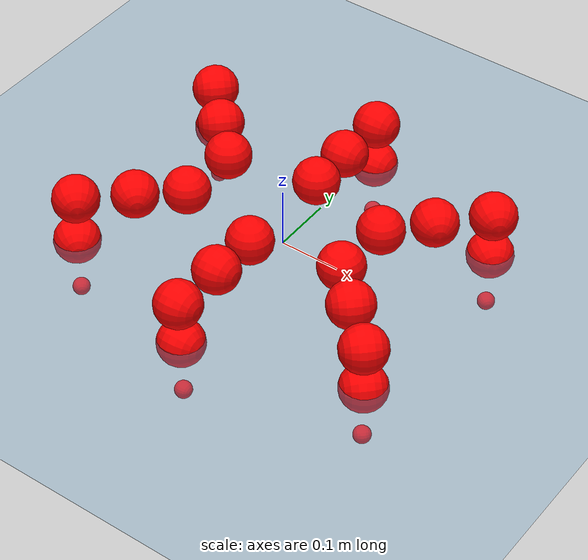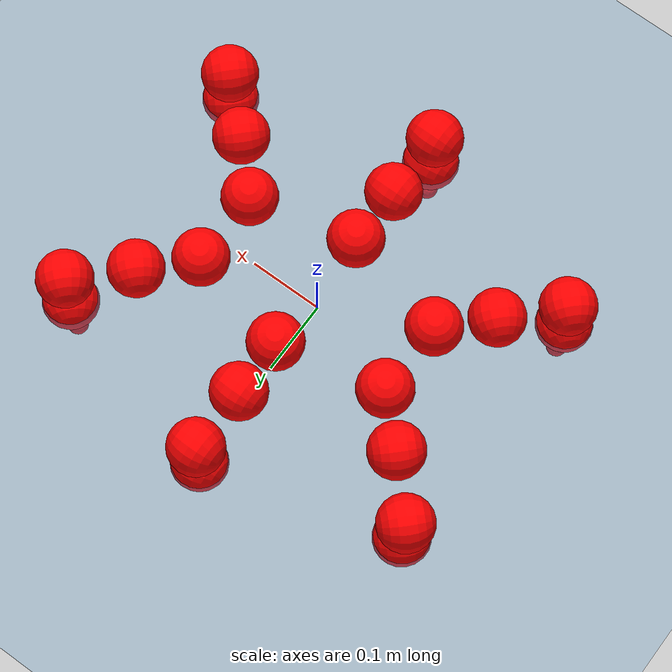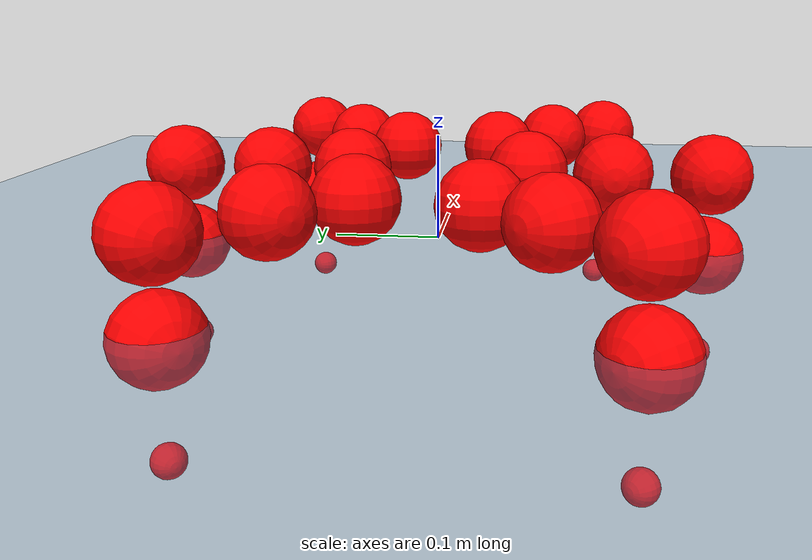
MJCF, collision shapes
<mujoco model="Golem">
  <compiler angle="radian" assetdir="assets" balanceinertia="true" inertiafromgeom="false"/>

  <option timestep="0.005" density="1.2" viscosity="2e-05"/>

  <size nkey="1"/>

  <visual>
    <quality shadowsize="8192"/>
    <map shadowclip="0.5"/>
  </visual>

  <default>
    <default class="/">
      <joint armature="0.01" damping="0.01" frictionloss="0.01"/>
      <geom contype="0" conaffinity="0" group="1" solref="-1000 -80"/>
      <site size="0.01 0.005 0.005" group="5"/>
      <general forcelimited="true" biastype="affine" gainprm="25" biasprm="0 -25 -0.5"/>
      <default class="visual">
        <geom type="mesh" group="2"/>
      </default>
      <default class="collision">
        <geom group="3"/>
      </default>
      <default class="foot">
        <geom size="0.01 0 0" condim="6" group="4" priority="1" solimp="0.015 1 0.01"/>
      </default>
      <default class="reward_collision_sphere">
        <geom group="5" rgba="1 0 0 1"/>
      </default>
    </default>
  </default>

  <asset>
    <texture type="skybox" colorspace="auto" name="//unnamed_texture_0" builtin="gradient" rgb1="0.95 0.95 0.95" rgb2="0.95 0.95 0.95" width="100" height="600"/>
    <texture type="2d" colorspace="auto" name="texplane" builtin="checker" rgb1="0.345 0.575 0.748" rgb2="0.345 0.575 0.748" markrgb="1 1 1" width="512" height="512"/>
    <material name="MatPlane" class="/" texture="texplane" texuniform="true" texrepeat="2 2" specular="0.9"/>
    <mesh name="body" class="/" file="body.stl" scale="0.001 0.001 0.001"/>
    <mesh name="coxa" class="/" file="coxa.stl" scale="0.001 0.001 0.001"/>
    <mesh name="femur" class="/" file="femur.stl" scale="0.001 0.001 0.001"/>
    <mesh name="tibia" class="/" file="tibia.stl" scale="0.001 0.001 0.001"/>
    <mesh name="tarsus" class="/" file="tarsus.stl" scale="0.001 0.001 0.001"/>
  </asset>

  <worldbody>
    <geom name="floor" class="/" size="100 100 0.125" type="plane" group="0" material="MatPlane"/>
    <light name="toplight_shadow" class="/" pos="0 0 5" dir="0.0990148 0.0990148 -0.990148" type="directional" ambient="0.04 0.04 0.04" diffuse="0.55 0.55 0.55" specular="0.12 0.12 0.12"/>
    <light name="toplight_fill" class="/" pos="0 0 5" dir="0.0990148 0.0990148 -0.990148" type="directional" castshadow="false" ambient="0.04 0.04 0.04" diffuse="0.3 0.3 0.3" specular="0.08 0.08 0.08"/>
    <body name="trunk" pos="5.70789e-05 0.00107447 -0.00228537" quat="0.999999 5.23318e-05 -0.000542376 0.0012607">
      <inertial pos="0.00113222 -0.00105803 -0.00156505" quat="1 -2.43772e-05 -0.000104398 2.50643e-05" mass="2.87363" diaginertia="0.00624191 0.00394551 0.0131747"/>
      <joint name="//unnamed_joint_0" type="free"/>
      <geom name="//unnamed_geom_1" class="/" pos="0 0 0.0676229" quat="1 0 0 0" type="mesh" rgba="0.9 0.9 0.9 1" mesh="body"/>
      <site name="imu" class="/" pos="0.121173 0.0138739 0.11779" size="0.00934215"/>
      <camera name="track" class="/" pos="0 -1.67186 0" quat="0.707107 0.707107 0 0" mode="trackcom"/>
      <camera name="ego_camera" class="/" pos="0.118314 0 0.105661" quat="-0.5 -0.5 0.5 0.5"/>
      <body name="coxa_RR" pos="-0.163304 -0.0693317 0.0695124" quat="0.383573 -0.000226215 -0.000590903 -0.92351">
        <inertial pos="0.00263915 -5.12906e-05 -0.00158902" quat="0.999989 -0.00253668 0.00329929 0.00210391" mass="0.169838" diaginertia="0.00631239 0.00424969 0.0136127"/>
        <joint name="coxa_joint_RR" class="/" pos="0 0 0" axis="0.000486276 -0.00346677 -0.999994" range="-3.12214 3.14246" armature="0.00870298" damping="0" frictionloss="0.00953234"/>
        <geom name="//unnamed_geom_2" class="/" type="mesh" rgba="0.2 0.2 0.2 1" mesh="coxa"/>
        <geom name="//unnamed_geom_3" class="reward_collision_sphere" size="0.0373686" pos="-0.0273033 0 0"/>
        <body name="femur_RR" pos="0.0519541 -0.00102115 0.00176558" quat="0.500497 -0.500191 0.498876 0.500434">
          <inertial pos="-0.000221077 0.00246886 0.00168058" quat="0.999939 0.00958871 0.00482649 0.00255832" mass="0.156691" diaginertia="0.00617855 0.00388203 0.0126926"/>
          <joint name="femur_joint_RR" class="/" pos="0 0 0" axis="-0.00348695 -0.00325963 -0.999989" stiffness="1.54099e-05" range="-3.14044 3.13941" armature="0.0106018" damping="0.00458898" frictionloss="0.00933687"/>
          <geom name="//unnamed_geom_4" class="/" type="mesh" rgba="0.9 0.9 0.9 1" mesh="femur"/>
          <geom name="//unnamed_geom_5" class="reward_collision_sphere" size="0.0373686"/>
          <body name="tibia_RR" pos="-0.00250251 -0.0894739 -0.000177652" quat="-9.57776e-06 1 0.000102882 4.01888e-05">
            <inertial pos="-0.000409242 0.00277349 -0.00101573" quat="1 -8.07648e-05 6.96855e-05 -0.000389266" mass="0.157128" diaginertia="0.00604001 0.00392368 0.0128338"/>
            <joint name="tibia_joint_RR" class="/" pos="0 0 0" axis="-0.0142661 -0.00214181 0.999896" range="-3.08617 3.12015" armature="0.00839898" damping="0.00650039" frictionloss="0.0103858"/>
            <geom name="//unnamed_geom_6" class="/" type="mesh" rgba="0.2 0.2 0.2 1" mesh="tibia"/>
            <geom name="//unnamed_geom_7" class="reward_collision_sphere" size="0.0373686"/>
            <body name="tarsus_RR" pos="0.0796586 0.00294228 -0.00237673" quat="1 -0.000175106 -0.000729645 -0.000467541">
              <inertial pos="0.0561187 0.00143367 0.00256702" quat="0.501029 0.49537 0.504981 0.498571" mass="0.15713" diaginertia="0.005947 0.00396076 0.0130713"/>
              <joint name="tarsus_joint_RR" class="/" pos="0 0 0" axis="0.0123966 0.00340793 0.999917" range="-3.17523 3.1501" armature="0.0093342" damping="0.0111288" frictionloss="0.00887918"/>
              <geom name="//unnamed_geom_8" class="/" type="mesh" rgba="0.9 0.9 0.9 1" mesh="tarsus"/>
              <geom name="foot_1" class="foot" size="0.0083849" pos="0.101932 0 0" quat="0 -0.707107 0 0.707107"/>
              <geom name="//unnamed_geom_10" class="reward_collision_sphere" size="0.0373686"/>
              <geom name="//unnamed_geom_11" class="reward_collision_sphere" size="0.0140132" pos="0.0978367 0 0"/>
              <site name="foot_1" class="foot" pos="0.101932 0 0" quat="0 -0.707107 0 0.707107" size="0.00934215"/>
            </body>
          </body>
        </body>
      </body>
      <body name="coxa_RM" pos="0.00213139 -0.113545 0.0701277" quat="0.707065 0.000346447 -0.000328472 -0.707148">
        <inertial pos="-0.000493707 -0.000174014 -0.00261977" quat="0.999926 -0.00676928 0.000522823 0.0101317" mass="0.164941" diaginertia="0.0064201 0.0043435 0.0140178"/>
        <joint name="coxa_joint_RM" class="/" pos="0 0 0" axis="0.0056532 -0.00898415 -0.999944" range="-3.14344 3.10553" armature="0.00957841" damping="0.00943021" frictionloss="0.0104322"/>
        <geom name="//unnamed_geom_12" class="/" type="mesh" rgba="0.2 0.2 0.2 1" mesh="coxa"/>
        <geom name="//unnamed_geom_13" class="reward_collision_sphere" size="0.0373686" pos="-0.0273033 0 0"/>
        <body name="femur_RM" pos="0.0519697 -0.00134415 -0.000748719" quat="0.500204 -0.499795 0.49967 0.500331">
          <inertial pos="0.000401499 0.00241747 0.000440123" quat="0.999986 0.00162984 -0.00371278 0.00353489" mass="0.166125" diaginertia="0.00601183 0.00404932 0.0129084"/>
          <joint name="femur_joint_RM" class="/" pos="0 0 0" axis="-0.00131549 -0.00020049 -0.999999" range="-3.08512 3.16746" armature="0.0105599" damping="0.0155683" frictionloss="0.0106356"/>
          <geom name="//unnamed_geom_14" class="/" type="mesh" rgba="0.9 0.9 0.9 1" mesh="femur"/>
          <geom name="//unnamed_geom_15" class="reward_collision_sphere" size="0.0373686"/>
          <body name="tibia_RM" pos="-0.000410498 -0.0898537 -0.000116875" quat="-0.000468944 1 -0.000398411 4.77786e-05">
            <inertial pos="-0.000324485 0.000199738 0.00272674" quat="0.999988 0.00293288 -0.00118542 -0.00384247" mass="0.168759" diaginertia="0.00622222 0.00407935 0.0129396"/>
            <joint name="tibia_joint_RM" class="/" pos="0 0 0" axis="0.00586192 -0.0102079 0.999931" range="-3.12474 3.18839" armature="0.00810339" damping="0.0180452" frictionloss="0.0106029"/>
            <geom name="//unnamed_geom_16" class="/" type="mesh" rgba="0.2 0.2 0.2 1" mesh="tibia"/>
            <geom name="//unnamed_geom_17" class="reward_collision_sphere" size="0.0373686"/>
            <body name="tarsus_RM" pos="0.0777378 -0.00204532 -0.000431258" quat="0.999999 0.00120792 0.000372226 4.15651e-05">
              <inertial pos="0.0550689 -0.00043521 0.000650839" quat="0.500108 0.497726 0.501055 0.501104" mass="0.174227" diaginertia="0.00646827 0.00422323 0.0136719"/>
              <joint name="tarsus_joint_RM" class="/" pos="0 0 0" axis="-0.00215743 0.00156581 0.999996" range="-3.13183 3.1572" armature="0.00879959" damping="0.0143017" frictionloss="0.00896585"/>
              <geom name="//unnamed_geom_18" class="/" type="mesh" rgba="0.9 0.9 0.9 1" mesh="tarsus"/>
              <geom name="foot_2" class="foot" size="0.00856796" pos="0.101932 0 0" quat="0 -0.707107 0 0.707107"/>
              <geom name="//unnamed_geom_20" class="reward_collision_sphere" size="0.0373686"/>
              <geom name="//unnamed_geom_21" class="reward_collision_sphere" size="0.0140132" pos="0.0978367 0 0"/>
              <site name="foot_2" class="foot" pos="0.101932 0 0" quat="0 -0.707107 0 0.707107" size="0.00934215"/>
            </body>
          </body>
        </body>
      </body>
      <body name="coxa_RF" pos="0.162697 -0.0716574 0.0700514" quat="0.923886 5.02061e-05 4.84664e-05 -0.382667">
        <inertial pos="-0.0025671 -0.000552379 -0.00247668" quat="0.999941 0.00790383 0.0066715 -0.00334358" mass="0.162171" diaginertia="0.00640865 0.00413892 0.0137012"/>
        <joint name="coxa_joint_RF" class="/" pos="0 0 0" axis="0.00515686 0.00500398 -0.999974" range="-3.15019 3.09357" armature="0.00980345" damping="0.0205307" frictionloss="0.0106297"/>
        <geom name="//unnamed_geom_22" class="/" type="mesh" rgba="0.2 0.2 0.2 1" mesh="coxa"/>
        <geom name="//unnamed_geom_23" class="reward_collision_sphere" size="0.0373686" pos="-0.0273033 0 0"/>
        <body name="femur_RF" pos="0.0560356 -0.00107839 0.00122626" quat="0.500539 -0.499909 0.498783 0.500767">
          <inertial pos="-0.000873518 0.000468025 0.000711481" quat="0.999963 -0.00114576 -0.00738735 0.0043655" mass="0.163824" diaginertia="0.00611577 0.00401732 0.0128262"/>
          <joint name="femur_joint_RF" class="/" pos="0 0 0" axis="0.00152541 0.00122321 -0.999998" range="-3.11697 3.1329" armature="0.00919154" damping="0.0107708" frictionloss="0.00890183"/>
          <geom name="//unnamed_geom_24" class="/" type="mesh" rgba="0.9 0.9 0.9 1" mesh="femur"/>
          <geom name="//unnamed_geom_25" class="reward_collision_sphere" size="0.0373686"/>
          <body name="tibia_RF" pos="0.00258869 -0.0883684 0.00185483" quat="0.000138541 1 0.000178633 -0.000121265">
            <inertial pos="0.000682284 -0.00258041 -0.00275143" quat="0.999904 0.0129609 -0.00224112 -0.00434127" mass="0.16034" diaginertia="0.00604338 0.00401181 0.0131983"/>
            <joint name="tibia_joint_RF" class="/" pos="0 0 0" axis="-0.00129701 0.0123787 0.999923" stiffness="0.00925274" range="-3.16765 3.13934" armature="0.00941388" damping="0.0118762" frictionloss="0.00839372"/>
            <geom name="//unnamed_geom_26" class="/" type="mesh" rgba="0.2 0.2 0.2 1" mesh="tibia"/>
            <geom name="//unnamed_geom_27" class="reward_collision_sphere" size="0.0373686"/>
            <body name="tarsus_RF" pos="0.0785685 -0.00114785 -0.00164208" quat="1 -2.29871e-05 -3.94268e-05 -2.82343e-05">
              <inertial pos="0.0537822 -0.000966677 0.000801627" quat="0.499361 0.499196 0.500879 0.500562" mass="0.160248" diaginertia="0.00605632 0.00387903 0.0127915"/>
              <joint name="tarsus_joint_RF" class="/" pos="0 0 0" axis="-0.0119495 0.00780744 0.999898" stiffness="0.00343476" range="-3.11988 3.15796" armature="0.00941129" damping="0" frictionloss="0.0102096"/>
              <geom name="//unnamed_geom_28" class="/" type="mesh" rgba="0.9 0.9 0.9 1" mesh="tarsus"/>
              <geom name="foot_3" class="foot" size="0.00958442" pos="0.101932 0 0" quat="0 -0.707107 0 0.707107"/>
              <geom name="//unnamed_geom_30" class="reward_collision_sphere" size="0.0373686"/>
              <geom name="//unnamed_geom_31" class="reward_collision_sphere" size="0.0140132" pos="0.0978367 0 0"/>
              <site name="foot_3" class="foot" pos="0.101932 0 0" quat="0 -0.707107 0 0.707107" size="0.00934215"/>
            </body>
          </body>
        </body>
      </body>
      <body name="coxa_LR" pos="-0.161296 0.0704286 0.0714988" quat="0.383986 -0.000411559 -0.000138699 0.923339">
        <inertial pos="-0.00131516 0.00254233 -0.00251025" quat="0.999988 0.00392673 -0.00268869 -0.000978888" mass="0.161292" diaginertia="0.00617235 0.00390877 0.0130109"/>
        <joint name="coxa_joint_LR" class="/" pos="0 0 0" axis="0.0144662 -0.0084361 -0.99986" stiffness="0.00452287" range="-3.16157 3.1943" armature="0.00932115" damping="0.0147634" frictionloss="0.0105343"/>
        <geom name="//unnamed_geom_32" class="/" type="mesh" rgba="0.2 0.2 0.2 1" mesh="coxa"/>
        <geom name="//unnamed_geom_33" class="reward_collision_sphere" size="0.0373686" pos="-0.0273033 0 0"/>
        <body name="femur_LR" pos="0.0528874 0.00106316 0.00182759" quat="0.50014 -0.499918 0.500098 0.499844">
          <inertial pos="-0.00101191 0.00247349 4.01218e-05" quat="0.999913 -0.0114999 -0.00591111 -0.00244149" mass="0.162156" diaginertia="0.00651086 0.00412733 0.0129091"/>
          <joint name="femur_joint_LR" class="/" pos="0 0 0" axis="0.00379983 0.0107255 0.999935" stiffness="0.000203305" range="-3.16654 3.15051" armature="0.0103548" damping="0.00509862" frictionloss="0.00958821"/>
          <geom name="//unnamed_geom_34" class="/" type="mesh" rgba="0.9 0.9 0.9 1" mesh="femur"/>
          <geom name="//unnamed_geom_35" class="reward_collision_sphere" size="0.0373686"/>
          <body name="tibia_LR" pos="0.00172784 -0.0907509 -0.00337695" quat="-0.000117103 1 -6.47116e-05 1.55041e-05">
            <inertial pos="-0.00165741 0.000221785 0.00282254" quat="0.999924 0.00280666 0.00488113 -0.0109938" mass="0.166972" diaginertia="0.00610327 0.00409849 0.0129063"/>
            <joint name="tibia_joint_LR" class="/" pos="0 0 0" axis="0.00168889 -0.00174946 -0.999997" range="-3.08781 3.1907" armature="0.00797257" damping="0" frictionloss="0.00931359"/>
            <geom name="//unnamed_geom_36" class="/" type="mesh" rgba="0.2 0.2 0.2 1" mesh="tibia"/>
            <geom name="//unnamed_geom_37" class="reward_collision_sphere" size="0.0373686"/>
            <body name="tarsus_LR" pos="0.0795245 -0.000611028 0.00194787" quat="1 -1.10156e-05 -4.67275e-06 -7.09932e-06">
              <inertial pos="0.0549881 -0.00256846 -0.00104925" quat="0.499395 0.499912 0.49996 0.500732" mass="0.157311" diaginertia="0.0062272 0.00419201 0.0134314"/>
              <joint name="tarsus_joint_LR" class="/" pos="0 0 0" axis="0.000786214 -0.000354671 -1" range="-3.12231 3.1817" armature="0.00947167" damping="0.00349156" frictionloss="0.00839917"/>
              <geom name="//unnamed_geom_38" class="/" type="mesh" rgba="0.9 0.9 0.9 1" mesh="tarsus"/>
              <geom name="foot_4" class="foot" size="0.0100723" pos="0.101932 0 0" quat="0.707107 0 -0.707107 0"/>
              <geom name="//unnamed_geom_40" class="reward_collision_sphere" size="0.0373686"/>
              <geom name="//unnamed_geom_41" class="reward_collision_sphere" size="0.0140132" pos="0.0978367 0 0"/>
              <site name="foot_4" class="foot" pos="0.101932 0 0" quat="0.707107 0 -0.707107 0" size="0.00934215"/>
            </body>
          </body>
        </body>
      </body>
      <body name="coxa_LM" pos="0.00282842 0.109491 0.070404" quat="0.70712 -0.000157056 -0.000508776 0.707093">
        <inertial pos="0.000725127 0.000239791 -0.00234415" quat="0.999986 -0.00418814 0.00200449 0.00234636" mass="0.160817" diaginertia="0.00630351 0.00403768 0.0131476"/>
        <joint name="coxa_joint_LM" class="/" pos="0 0 0" axis="-0.00982622 0.00207282 -0.99995" range="-3.11833 3.13491" armature="0.00939874" damping="0.003054" frictionloss="0.00938488"/>
        <geom name="//unnamed_geom_42" class="/" type="mesh" rgba="0.2 0.2 0.2 1" mesh="coxa"/>
        <geom name="//unnamed_geom_43" class="reward_collision_sphere" size="0.0373686" pos="-0.0273033 0 0"/>
        <body name="femur_LM" pos="0.0508787 0.00188368 0.000242743" quat="0.499974 -0.499931 0.500408 0.499687">
          <inertial pos="-0.00252819 -0.00054825 -0.00242552" quat="0.999913 -0.000580087 -0.00948968 0.0091034" mass="0.158506" diaginertia="0.00614232 0.00397069 0.0130254"/>
          <joint name="femur_joint_LM" class="/" pos="0 0 0" axis="0.00409003 -0.00508435 0.999979" stiffness="0.000797216" range="-3.1531 3.08986" armature="0.00845097" damping="0" frictionloss="0.00804433"/>
          <geom name="//unnamed_geom_44" class="/" type="mesh" rgba="0.9 0.9 0.9 1" mesh="femur"/>
          <geom name="//unnamed_geom_45" class="reward_collision_sphere" size="0.0373686"/>
          <body name="tibia_LM" pos="-0.000445343 -0.0878215 0.000216103" quat="0.000390131 1 0.000211154 0.000599265">
            <inertial pos="0.00116236 -0.000336262 0.000153973" quat="0.999986 -0.00465037 0.00237866 -0.00114719" mass="0.16214" diaginertia="0.00607052 0.00396725 0.0128227"/>
            <joint name="tibia_joint_LM" class="/" pos="0 0 0" axis="0.00548602 0.013897 -0.999888" range="-3.08517 3.10724" armature="0.0102838" damping="0" frictionloss="0.0106251"/>
            <geom name="//unnamed_geom_46" class="/" type="mesh" rgba="0.2 0.2 0.2 1" mesh="tibia"/>
            <geom name="//unnamed_geom_47" class="reward_collision_sphere" size="0.0373686"/>
            <body name="tarsus_LM" pos="0.0785766 -0.00113024 -0.000293124" quat="1 -1.69999e-05 0.000107225 2.24119e-05">
              <inertial pos="0.0533594 -0.00238025 0.000605667" quat="0.496372 0.506581 0.49824 0.498746" mass="0.157435" diaginertia="0.00610924 0.00386126 0.0127505"/>
              <joint name="tarsus_joint_LM" class="/" pos="0 0 0" axis="-0.00889095 0.00448627 -0.99995" stiffness="0.0130955" range="-3.14365 3.14203" armature="0.00968606" damping="0.021567" frictionloss="0.0105051"/>
              <geom name="//unnamed_geom_48" class="/" type="mesh" rgba="0.9 0.9 0.9 1" mesh="tarsus"/>
              <geom name="foot_5" class="foot" size="0.0101565" pos="0.101932 0 0" quat="0.707107 0 -0.707107 0"/>
              <geom name="//unnamed_geom_50" class="reward_collision_sphere" size="0.0373686"/>
              <geom name="//unnamed_geom_51" class="reward_collision_sphere" size="0.0140132" pos="0.0978367 0 0"/>
              <site name="foot_5" class="foot" pos="0.101932 0 0" quat="0.707107 0 -0.707107 0" size="0.00934215"/>
            </body>
          </body>
        </body>
      </body>
      <body name="coxa_LF" pos="0.16381 0.0675593 0.0681116" quat="0.923893 1.56687e-05 -1.11736e-05 0.382652">
        <inertial pos="-0.00252792 -0.00222001 -0.00236592" quat="0.999999 0.000798674 0.000951004 -0.00037613" mass="0.156443" diaginertia="0.00602776 0.00382652 0.013147"/>
        <joint name="coxa_joint_LF" class="/" pos="0 0 0" axis="0.00661213 -0.00767533 -0.999949" range="-3.17691 3.13727" armature="0.00950256" damping="0.00823756" frictionloss="0.00810296"/>
        <geom name="//unnamed_geom_52" class="/" type="mesh" rgba="0.2 0.2 0.2 1" mesh="coxa"/>
        <geom name="//unnamed_geom_53" class="reward_collision_sphere" size="0.0373686" pos="-0.0273033 0 0"/>
        <body name="femur_LF" pos="0.0551256 0.00276726 0.00103443" quat="0.499483 -0.500781 0.500343 0.499391">
          <inertial pos="-0.000430425 -0.00213823 -0.000316421" quat="0.999999 -0.000685851 0.000866999 0.000154951" mass="0.157155" diaginertia="0.00583118 0.00393741 0.0127303"/>
          <joint name="femur_joint_LF" class="/" pos="0 0 0" axis="-0.00691599 0.0137619 0.999881" range="-3.16621 3.19338" armature="0.00889686" damping="0.00721265" frictionloss="0.00909569"/>
          <geom name="//unnamed_geom_54" class="/" type="mesh" rgba="0.9 0.9 0.9 1" mesh="femur"/>
          <geom name="//unnamed_geom_55" class="reward_collision_sphere" size="0.0373686"/>
          <body name="tibia_LF" pos="-0.0003896 -0.0896869 9.49376e-05" quat="0.000695512 1 -0.000214123 0.000496828">
            <inertial pos="0.0020121 0.00290383 -0.00157064" quat="0.999998 0.000683819 0.00139767 -0.00123833" mass="0.168948" diaginertia="0.00610562 0.00410182 0.0129459"/>
            <joint name="tibia_joint_LF" class="/" pos="0 0 0" axis="-0.00703354 0.00811223 -0.999942" range="-3.1474 3.08488" armature="0.0091199" damping="0.00691426" frictionloss="0.00914071"/>
            <geom name="//unnamed_geom_56" class="/" type="mesh" rgba="0.2 0.2 0.2 1" mesh="tibia"/>
            <geom name="//unnamed_geom_57" class="reward_collision_sphere" size="0.0373686"/>
            <body name="tarsus_LF" pos="0.0793833 0.000365514 -0.00318096" quat="1 -9.58949e-06 7.01462e-06 -2.9534e-06">
              <inertial pos="0.0533964 -0.00020507 0.000591063" quat="0.507937 0.497178 0.501494 0.493273" mass="0.162157" diaginertia="0.00623925 0.00411578 0.0133648"/>
              <joint name="tarsus_joint_LF" class="/" pos="0 0 0" axis="-0.00204941 -0.00825117 -0.999964" stiffness="0.0288891" range="-3.11315 3.0885" armature="0.00910013" damping="0.0369609" frictionloss="0.00877889"/>
              <geom name="//unnamed_geom_58" class="/" type="mesh" rgba="0.9 0.9 0.9 1" mesh="tarsus"/>
              <geom name="foot_6" class="foot" size="0.00920662" pos="0.101932 0 0" quat="0.707107 0 -0.707107 0"/>
              <geom name="//unnamed_geom_60" class="reward_collision_sphere" size="0.0373686"/>
              <geom name="//unnamed_geom_61" class="reward_collision_sphere" size="0.0140132" pos="0.0978367 0 0"/>
              <site name="foot_6" class="foot" pos="0.101932 0 0" quat="0.707107 0 -0.707107 0" size="0.00934215"/>
            </body>
          </body>
        </body>
      </body>
    </body>
  </worldbody>

  <contact>
    <pair class="/" geom1="floor" geom2="foot_1" name="//unnamed_contact_0"/>
    <pair class="/" geom1="floor" geom2="foot_2" name="//unnamed_contact_1"/>
    <pair class="/" geom1="floor" geom2="foot_3" name="//unnamed_contact_2"/>
    <pair class="/" geom1="floor" geom2="foot_4" name="//unnamed_contact_3"/>
    <pair class="/" geom1="floor" geom2="foot_5" name="//unnamed_contact_4"/>
    <pair class="/" geom1="floor" geom2="foot_6" name="//unnamed_contact_5"/>
  </contact>

  <actuator>
    <general name="coxa_joint_RR" class="/" joint="coxa_joint_RR" forcerange="-6.81319 6.81319" gainprm="22.6944" biasprm="0 -22.6944 -0.489801"/>
    <general name="femur_joint_RR" class="/" joint="femur_joint_RR" forcerange="-6.69867 6.69867" gainprm="22.6944" biasprm="0 -22.6944 -0.489801"/>
    <general name="tibia_joint_RR" class="/" joint="tibia_joint_RR" forcerange="-6.83316 6.83316" gainprm="22.6944" biasprm="0 -22.6944 -0.489801"/>
    <general name="tarsus_joint_RR" class="/" joint="tarsus_joint_RR" forcerange="-7.52395 7.52395" gainprm="22.6944" biasprm="0 -22.6944 -0.489801"/>
    <general name="coxa_joint_RM" class="/" joint="coxa_joint_RM" forcerange="-6.66771 6.66771" gainprm="22.6944" biasprm="0 -22.6944 -0.489801"/>
    <general name="femur_joint_RM" class="/" joint="femur_joint_RM" forcerange="-7.52468 7.52468" gainprm="22.6944" biasprm="0 -22.6944 -0.489801"/>
    <general name="tibia_joint_RM" class="/" joint="tibia_joint_RM" forcerange="-6.74984 6.74984" gainprm="22.6944" biasprm="0 -22.6944 -0.489801"/>
    <general name="tarsus_joint_RM" class="/" joint="tarsus_joint_RM" forcerange="-7.04564 7.04564" gainprm="22.6944" biasprm="0 -22.6944 -0.489801"/>
    <general name="coxa_joint_RF" class="/" joint="coxa_joint_RF" forcerange="-6.11777 6.11777" gainprm="22.6944" biasprm="0 -22.6944 -0.489801"/>
    <general name="femur_joint_RF" class="/" joint="femur_joint_RF" forcerange="-6.553 6.553" gainprm="22.6944" biasprm="0 -22.6944 -0.489801"/>
    <general name="tibia_joint_RF" class="/" joint="tibia_joint_RF" forcerange="-6.88421 6.88421" gainprm="22.6944" biasprm="0 -22.6944 -0.489801"/>
    <general name="tarsus_joint_RF" class="/" joint="tarsus_joint_RF" forcerange="-6.5425 6.5425" gainprm="22.6944" biasprm="0 -22.6944 -0.489801"/>
    <general name="coxa_joint_LR" class="/" joint="coxa_joint_LR" forcerange="-6.8926 6.8926" gainprm="22.6944" biasprm="0 -22.6944 -0.489801"/>
    <general name="femur_joint_LR" class="/" joint="femur_joint_LR" forcerange="-6.76255 6.76255" gainprm="22.6944" biasprm="0 -22.6944 -0.489801"/>
    <general name="tibia_joint_LR" class="/" joint="tibia_joint_LR" forcerange="-7.00866 7.00866" gainprm="22.6944" biasprm="0 -22.6944 -0.489801"/>
    <general name="tarsus_joint_LR" class="/" joint="tarsus_joint_LR" forcerange="-6.84182 6.84182" gainprm="22.6944" biasprm="0 -22.6944 -0.489801"/>
    <general name="coxa_joint_LM" class="/" joint="coxa_joint_LM" forcerange="-7.05013 7.05013" gainprm="22.6944" biasprm="0 -22.6944 -0.489801"/>
    <general name="femur_joint_LM" class="/" joint="femur_joint_LM" forcerange="-7.08142 7.08142" gainprm="22.6944" biasprm="0 -22.6944 -0.489801"/>
    <general name="tibia_joint_LM" class="/" joint="tibia_joint_LM" forcerange="-6.79219 6.79219" gainprm="22.6944" biasprm="0 -22.6944 -0.489801"/>
    <general name="tarsus_joint_LM" class="/" joint="tarsus_joint_LM" forcerange="-7.00328 7.00328" gainprm="22.6944" biasprm="0 -22.6944 -0.489801"/>
    <general name="coxa_joint_LF" class="/" joint="coxa_joint_LF" forcerange="-6.40402 6.40402" gainprm="22.6944" biasprm="0 -22.6944 -0.489801"/>
    <general name="femur_joint_LF" class="/" joint="femur_joint_LF" forcerange="-6.79123 6.79123" gainprm="22.6944" biasprm="0 -22.6944 -0.489801"/>
    <general name="tibia_joint_LF" class="/" joint="tibia_joint_LF" forcerange="-6.83888 6.83888" gainprm="22.6944" biasprm="0 -22.6944 -0.489801"/>
    <general name="tarsus_joint_LF" class="/" joint="tarsus_joint_LF" forcerange="-6.73533 6.73533" gainprm="22.6944" biasprm="0 -22.6944 -0.489801"/>
  </actuator>

  <sensor>
    <gyro site="imu" name="imu_angular_velocity"/>
    <velocimeter site="imu" name="imu_linear_velocity"/>
    <framelinvel objtype="site" objname="foot_1" name="foot_1_global_linear_velocity"/>
    <framelinvel objtype="site" objname="foot_2" name="foot_2_global_linear_velocity"/>
    <framelinvel objtype="site" objname="foot_3" name="foot_3_global_linear_velocity"/>
    <framelinvel objtype="site" objname="foot_4" name="foot_4_global_linear_velocity"/>
    <framelinvel objtype="site" objname="foot_5" name="foot_5_global_linear_velocity"/>
    <framelinvel objtype="site" objname="foot_6" name="foot_6_global_linear_velocity"/>
  </sensor>

  <keyframe>
    <key name="home" qpos="0 0 0.1457 1 0 0 0 0 0 0 0 0 0 0 0 0 0 0 0 0 0 0 0 0 0 0 0 0 0 0 0"/>
  </keyframe>
</mujoco>
